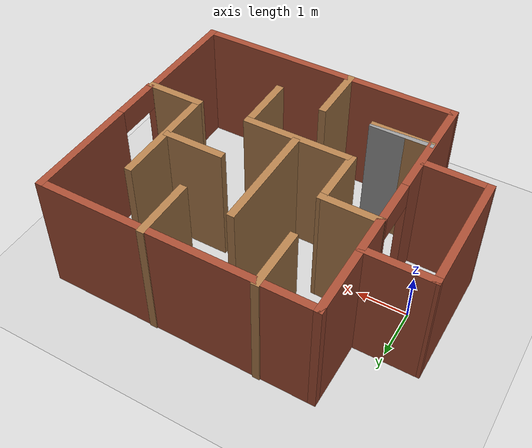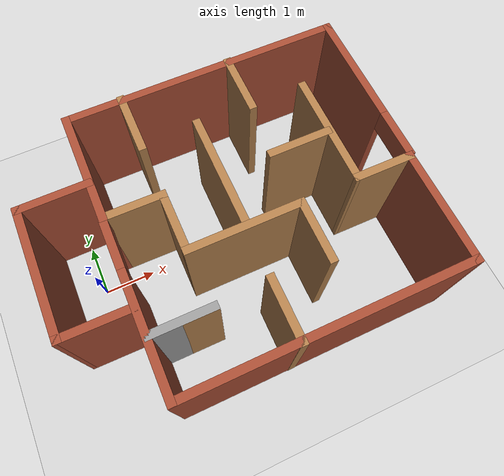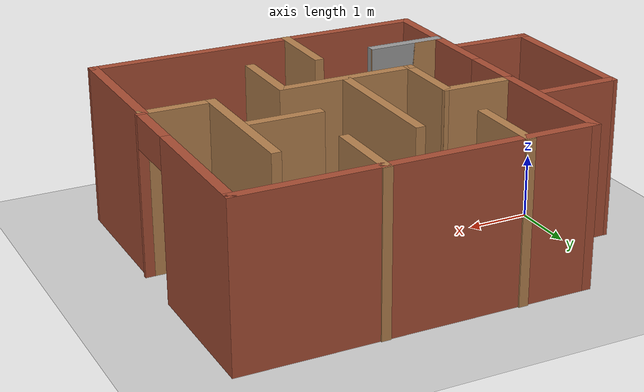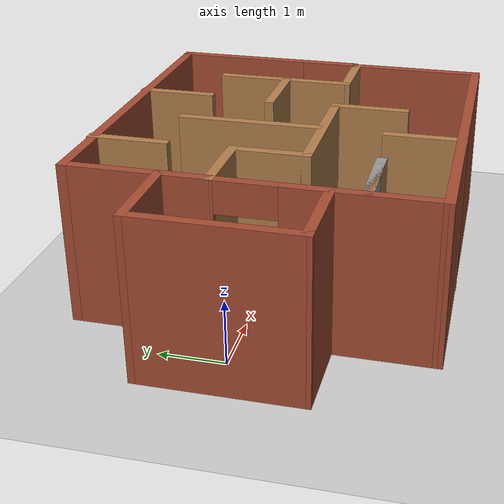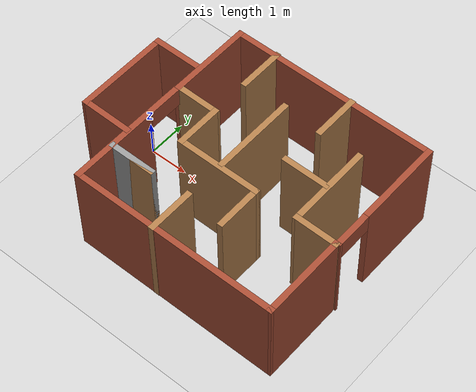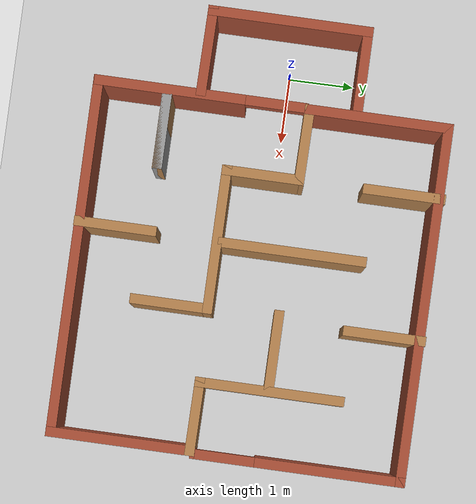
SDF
<sdf version="1.7">
 <world name="default">
  <light name="sun" type="directional">
   <pose>0 0 10 0 -0 0</pose>
   <diffuse>0.8 0.8 0.8 1</diffuse>
   <specular>0.2 0.2 0.2 1</specular>
   <attenuation>
    <range>1000</range>
    <constant>0.9</constant>
    <linear>0.01</linear>
    <quadratic>0.001</quadratic>
   </attenuation>
   <direction>-0.5 0.1 -0.9</direction>
   <spot><inner_angle>0</inner_angle><outer_angle>0</outer_angle><falloff>0</falloff></spot>
  </light>
  <model name="ground_plane">
   <static>1</static>
   <link name="link">
    <collision name="collision">
     <geometry><plane><normal>0 0 1</normal><size>100 100</size></plane></geometry>
     <surface><friction><ode><mu>100</mu><mu2>50</mu2></ode></friction></surface>
    </collision>
    <visual name="visual">
     <cast_shadows>0</cast_shadows>
     <geometry><plane><normal>0 0 1</normal><size>100 100</size></plane></geometry>
     <material>
      <script><uri>file://media/materials/scripts/gazebo.material</uri><name>Gazebo/Grey</name></script>
     </material>
    </visual>
   </link>
  </model>
  <gravity>0 0 -9.8</gravity>
  <magnetic_field>6e-06 2.3e-05 -4.2e-05</magnetic_field>
  <atmosphere type="adiabatic"/>
  <physics type="ode">
   <max_step_size>0.001</max_step_size>
   <real_time_factor>1</real_time_factor>
   <real_time_update_rate>1000</real_time_update_rate>
  </physics>
  <scene><ambient>0.4 0.4 0.4 1</ambient><background>0.7 0.7 0.7 1</background><shadows>1</shadows></scene>
  <audio><device>default</device></audio>
  <spherical_coordinates>
   <surface_model>EARTH_WGS84</surface_model>
   <latitude_deg>0</latitude_deg>
   <longitude_deg>0</longitude_deg>
   <elevation>0</elevation>
   <heading_deg>0</heading_deg>
  </spherical_coordinates>
  <model name="maze">
   <pose>2.66264 -0.17795 0 0 0 -1.57386</pose>
   <link name="Wall_1">
    <collision name="Wall_1_Collision">
     <geometry><box><size>2.25 0.15 2.5</size></box></geometry>
     <pose>0 0 1.25 0 -0 0</pose>
    </collision>
    <visual name="Wall_1_Visual">
     <pose>0 0 1.25 0 -0 0</pose>
     <geometry><box><size>2.25 0.15 2.5</size></box></geometry>
     <material>
      <script><uri>file://media/materials/scripts/gazebo.material</uri><name>Gazebo/Bricks</name></script>
      <ambient>1 1 1 1</ambient>
     </material>
     <meta><layer>0</layer></meta>
    </visual>
    <pose>-1.58804 -2.03485 0 0 -0 0</pose>
   </link>
   <link name="Wall_10">
    <pose>-1.08804 3.31515 0 0 -0 0</pose>
    <visual name="Wall_10_Visual_0">
     <pose>-0.484608 0 1.25 0 -0 0</pose>
     <geometry><box><size>2.28078 0.15 2.5</size></box></geometry>
     <material>
      <script><uri>file://media/materials/scripts/gazebo.material</uri><name>Gazebo/Bricks</name></script>
      <ambient>1 1 1 1</ambient>
     </material>
     <meta><layer>0</layer></meta>
    </visual>
    <collision name="Wall_10_Collision_0">
     <geometry><box><size>2.28078 0.15 2.5</size></box></geometry>
     <pose>-0.484608 0 1.25 0 -0 0</pose>
    </collision>
    <visual name="Wall_10_Visual_1">
     <pose>1.59039 0 1.25 0 -0 0</pose>
     <geometry><box><size>0.069216 0.15 2.5</size></box></geometry>
     <material>
      <script><uri>file://media/materials/scripts/gazebo.material</uri><name>Gazebo/Bricks</name></script>
      <ambient>1 1 1 1</ambient>
     </material>
     <meta><layer>0</layer></meta>
    </visual>
    <collision name="Wall_10_Collision_1">
     <geometry><box><size>0.069216 0.15 2.5</size></box></geometry>
     <pose>1.59039 0 1.25 0 -0 0</pose>
    </collision>
    <visual name="Wall_10_Visual_2">
     <pose>1.10578 0 2.25 0 -0 0</pose>
     <geometry><box><size>0.9 0.15 0.5</size></box></geometry>
     <material>
      <script><uri>file://media/materials/scripts/gazebo.material</uri><name>Gazebo/Bricks</name></script>
      <ambient>1 1 1 1</ambient>
     </material>
     <meta><layer>0</layer></meta>
    </visual>
    <collision name="Wall_10_Collision_2">
     <geometry><box><size>0.9 0.15 0.5</size></box></geometry>
     <pose>1.10578 0 2.25 0 -0 0</pose>
    </collision>
   </link>
   <link name="Wall_12">
    <collision name="Wall_12_Collision">
     <geometry><box><size>2.26063 0.15 2.5</size></box></geometry>
     <pose>0 0 1.25 0 -0 0</pose>
    </collision>
    <visual name="Wall_12_Visual">
     <pose>0 0 1.25 0 -0 0</pose>
     <geometry><box><size>2.26063 0.15 2.5</size></box></geometry>
     <material>
      <script><uri>file://media/materials/scripts/gazebo.material</uri><name>Gazebo/Wood</name></script>
      <ambient>1 1 1 1</ambient>
     </material>
     <meta><layer>0</layer></meta>
    </visual>
    <pose>-0.51755 2.239 0 0 -0 0</pose>
   </link>
   <link name="Wall_13">
    <collision name="Wall_13_Collision">
     <geometry><box><size>1.18906 0.15 2.5</size></box></geometry>
     <pose>0 0 1.25 0 -0 0</pose>
    </collision>
    <visual name="Wall_13_Visual">
     <pose>0 0 1.25 0 -0 0</pose>
     <geometry><box><size>1.18906 0.15 2.5</size></box></geometry>
     <material>
      <script><uri>file://media/materials/scripts/gazebo.material</uri><name>Gazebo/Wood</name></script>
      <ambient>1 1 1 1</ambient>
     </material>
     <meta><layer>0</layer></meta>
    </visual>
    <pose>0.541051 2.75844 0 0 -0 1.56447</pose>
   </link>
   <link name="Wall_15">
    <collision name="Wall_15_Collision">
     <geometry><box><size>2.25 0.15 2.5</size></box></geometry>
     <pose>0 0 1.25 0 -0 0</pose>
    </collision>
    <visual name="Wall_15_Visual">
     <pose>0 0 1.25 0 -0 0</pose>
     <geometry><box><size>2.25 0.15 2.5</size></box></geometry>
     <material>
      <script><uri>file://media/materials/scripts/gazebo.material</uri><name>Gazebo/Bricks</name></script>
      <ambient>1 1 1 1</ambient>
     </material>
     <meta><layer>0</layer></meta>
    </visual>
    <pose>1.59434 3.27788 0 0 -0 0</pose>
   </link>
   <link name="Wall_16">
    <collision name="Wall_16_Collision">
     <geometry><box><size>5.47372 0.15 2.5</size></box></geometry>
     <pose>0 0 1.25 0 -0 0</pose>
    </collision>
    <visual name="Wall_16_Visual">
     <pose>0 0 1.25 0 -0 0</pose>
     <geometry><box><size>5.47372 0.15 2.5</size></box></geometry>
     <material>
      <script><uri>file://media/materials/scripts/gazebo.material</uri><name>Gazebo/Bricks</name></script>
      <ambient>1 1 1 1</ambient>
     </material>
     <meta><layer>0</layer></meta>
    </visual>
    <pose>2.6542 0.61603 0 0 -0 -1.56709</pose>
   </link>
   <link name="Wall_17">
    <pose>1.10749 -2.04582 0 0 -0 3.14159</pose>
    <visual name="Wall_17_Visual_0">
     <pose>-0.477332 0 1.25 0 -0 0</pose>
     <geometry><box><size>2.29534 0.15 2.5</size></box></geometry>
     <material>
      <script><uri>file://media/materials/scripts/gazebo.material</uri><name>Gazebo/Bricks</name></script>
      <ambient>1 1 1 1</ambient>
     </material>
     <meta><layer>0</layer></meta>
    </visual>
    <collision name="Wall_17_Collision_0">
     <geometry><box><size>2.29534 0.15 2.5</size></box></geometry>
     <pose>-0.477332 0 1.25 0 -0 0</pose>
    </collision>
    <visual name="Wall_17_Visual_1">
     <pose>1.59767 0 1.25 0 -0 0</pose>
     <geometry><box><size>0.054665 0.15 2.5</size></box></geometry>
     <material>
      <script><uri>file://media/materials/scripts/gazebo.material</uri><name>Gazebo/Bricks</name></script>
      <ambient>1 1 1 1</ambient>
     </material>
     <meta><layer>0</layer></meta>
    </visual>
    <collision name="Wall_17_Collision_1">
     <geometry><box><size>0.054665 0.15 2.5</size></box></geometry>
     <pose>1.59767 0 1.25 0 -0 0</pose>
    </collision>
    <visual name="Wall_17_Visual_2">
     <pose>1.12034 0 2.25 0 -0 0</pose>
     <geometry><box><size>0.9 0.15 0.5</size></box></geometry>
     <material>
      <script><uri>file://media/materials/scripts/gazebo.material</uri><name>Gazebo/Bricks</name></script>
      <ambient>1 1 1 1</ambient>
     </material>
     <meta><layer>0</layer></meta>
    </visual>
    <collision name="Wall_17_Collision_2">
     <geometry><box><size>0.9 0.15 0.5</size></box></geometry>
     <pose>1.12034 0 2.25 0 -0 0</pose>
    </collision>
   </link>
   <link name="Wall_19">
    <collision name="Wall_19_Collision">
     <geometry><box><size>1.25 0.15 2.5</size></box></geometry>
     <pose>0 0 1.25 0 -0 0</pose>
    </collision>
    <visual name="Wall_19_Visual">
     <pose>0 0 1.25 0 -0 0</pose>
     <geometry><box><size>1.25 0.15 2.5</size></box></geometry>
     <material>
      <script><uri>file://media/materials/scripts/gazebo.material</uri><name>Gazebo/Grey</name></script>
      <ambient>1 1 1 1</ambient>
     </material>
     <meta><layer>0</layer></meta>
    </visual>
    <pose>1.61609 -1.46513 0 0 -0 1.5708</pose>
   </link>
   <link name="Wall_21">
    <collision name="Wall_21_Collision">
     <geometry><box><size>1.25 0.15 2.5</size></box></geometry>
     <pose>0 0 1.25 0 -0 0</pose>
    </collision>
    <visual name="Wall_21_Visual">
     <pose>0 0 1.25 0 -0 0</pose>
     <geometry><box><size>1.25 0.15 2.5</size></box></geometry>
     <material>
      <script><uri>file://media/materials/scripts/gazebo.material</uri><name>Gazebo/Wood</name></script>
      <ambient>1 1 1 1</ambient>
     </material>
     <meta><layer>0</layer></meta>
    </visual>
    <pose>2.11349 0.095501 0 0 -0 0</pose>
   </link>
   <link name="Wall_23">
    <collision name="Wall_23_Collision">
     <geometry><box><size>1.25 0.15 2.5</size></box></geometry>
     <pose>0 0 1.25 0 -0 0</pose>
    </collision>
    <visual name="Wall_23_Visual">
     <pose>0 0 1.25 0 -0 0</pose>
     <geometry><box><size>1.25 0.15 2.5</size></box></geometry>
     <material>
      <script><uri>file://media/materials/scripts/gazebo.material</uri><name>Gazebo/Wood</name></script>
      <ambient>1 1 1 1</ambient>
     </material>
     <meta><layer>0</layer></meta>
    </visual>
    <pose>-0.501113 1.6364 0 0 -0 -1.5708</pose>
   </link>
   <link name="Wall_25">
    <collision name="Wall_25_Collision">
     <geometry><box><size>1.25 0.15 2.5</size></box></geometry>
     <pose>0 0 1.25 0 -0 0</pose>
    </collision>
    <visual name="Wall_25_Visual">
     <pose>0 0 1.25 0 -0 0</pose>
     <geometry><box><size>1.25 0.15 2.5</size></box></geometry>
     <material>
      <script><uri>file://media/materials/scripts/gazebo.material</uri><name>Gazebo/Wood</name></script>
      <ambient>1 1 1 1</ambient>
     </material>
     <meta><layer>0</layer></meta>
    </visual>
    <pose>-2.10777 1.1804 0 0 -0 0</pose>
   </link>
   <link name="Wall_27">
    <collision name="Wall_27_Collision">
     <geometry><box><size>1.25 0.15 2.5</size></box></geometry>
     <pose>0 0 1.25 0 -0 0</pose>
    </collision>
    <visual name="Wall_27_Visual">
     <pose>0 0 1.25 0 -0 0</pose>
     <geometry><box><size>1.25 0.15 2.5</size></box></geometry>
     <material>
      <script><uri>file://media/materials/scripts/gazebo.material</uri><name>Gazebo/Wood</name></script>
      <ambient>1 1 1 1</ambient>
     </material>
     <meta><layer>0</layer></meta>
    </visual>
    <pose>-2.11434 -0.969675 0 0 -0 0</pose>
   </link>
   <link name="Wall_29">
    <collision name="Wall_29_Collision">
     <geometry><box><size>2.25 0.15 2.5</size></box></geometry>
     <pose>0 0 1.25 0 -0 0</pose>
    </collision>
    <visual name="Wall_29_Visual">
     <pose>0 0 1.25 0 -0 0</pose>
     <geometry><box><size>2.25 0.15 2.5</size></box></geometry>
     <material>
      <script><uri>file://media/materials/scripts/gazebo.material</uri><name>Gazebo/Wood</name></script>
      <ambient>1 1 1 1</ambient>
     </material>
     <meta><layer>0</layer></meta>
    </visual>
    <pose>-0.56889 0.121802 0 0 -0 0</pose>
   </link>
   <link name="Wall_31">
    <collision name="Wall_31_Collision">
     <geometry><box><size>1.25 0.15 2.5</size></box></geometry>
     <pose>0 0 1.25 0 -0 0</pose>
    </collision>
    <visual name="Wall_31_Visual">
     <pose>0 0 1.25 0 -0 0</pose>
     <geometry><box><size>1.25 0.15 2.5</size></box></geometry>
     <material>
      <script><uri>file://media/materials/scripts/gazebo.material</uri><name>Gazebo/Wood</name></script>
      <ambient>1 1 1 1</ambient>
     </material>
     <meta><layer>0</layer></meta>
    </visual>
    <pose>1.61609 -1.46513 0 0 -0 -1.5708</pose>
   </link>
   <link name="Wall_33">
    <collision name="Wall_33_Collision">
     <geometry><box><size>1.41815 0.15 2.5</size></box></geometry>
     <pose>0 0 1.25 0 -0 0</pose>
    </collision>
    <visual name="Wall_33_Visual">
     <pose>0 0 1.25 0 -0 0</pose>
     <geometry><box><size>1.41815 0.15 2.5</size></box></geometry>
     <material>
      <script><uri>file://media/materials/scripts/gazebo.material</uri><name>Gazebo/Bricks</name></script>
      <ambient>1 1 1 1</ambient>
     </material>
     <meta><layer>0</layer></meta>
    </visual>
    <pose>-1.25275 -2.68097 0 0 -0 -1.56939</pose>
   </link>
   <link name="Wall_34">
    <collision name="Wall_34_Collision">
     <geometry><box><size>2.50578 0.15 2.5</size></box></geometry>
     <pose>0 0 1.25 0 -0 0</pose>
    </collision>
    <visual name="Wall_34_Visual">
     <pose>0 0 1.25 0 -0 0</pose>
     <geometry><box><size>2.50578 0.15 2.5</size></box></geometry>
     <material>
      <script><uri>file://media/materials/scripts/gazebo.material</uri><name>Gazebo/Bricks</name></script>
      <ambient>1 1 1 1</ambient>
     </material>
     <meta><layer>0</layer></meta>
    </visual>
    <pose>-0.073961 -3.31452 0 0 -0 0.00042</pose>
   </link>
   <link name="Wall_35">
    <collision name="Wall_35_Collision">
     <geometry><box><size>1.37218 0.15 2.5</size></box></geometry>
     <pose>0 0 1.25 0 -0 0</pose>
    </collision>
    <visual name="Wall_35_Visual">
     <pose>0 0 1.25 0 -0 0</pose>
     <geometry><box><size>1.37218 0.15 2.5</size></box></geometry>
     <material>
      <script><uri>file://media/materials/scripts/gazebo.material</uri><name>Gazebo/Bricks</name></script>
      <ambient>1 1 1 1</ambient>
     </material>
     <meta><layer>0</layer></meta>
    </visual>
    <pose>1.10993 -2.70293 0 0 -0 1.56099</pose>
   </link>
   <link name="Wall_4">
    <collision name="Wall_4_Collision">
     <geometry><box><size>1.22176 0.15 2.5</size></box></geometry>
     <pose>0 0 1.25 0 -0 0</pose>
    </collision>
    <visual name="Wall_4_Visual">
     <pose>0 0 1.25 0 -0 0</pose>
     <geometry><box><size>1.22176 0.15 2.5</size></box></geometry>
     <material>
      <script><uri>file://media/materials/scripts/gazebo.material</uri><name>Gazebo/Wood</name></script>
      <ambient>1 1 1 1</ambient>
     </material>
     <meta><layer>0</layer></meta>
    </visual>
    <pose>-0.532727 -1.49898 0 0 -0 1.56088</pose>
   </link>
   <link name="Wall_5">
    <collision name="Wall_5_Collision">
     <geometry><box><size>1.25 0.15 2.5</size></box></geometry>
     <pose>0 0 1.25 0 -0 0</pose>
    </collision>
    <visual name="Wall_5_Visual">
     <pose>0 0 1.25 0 -0 0</pose>
     <geometry><box><size>1.25 0.15 2.5</size></box></geometry>
     <material>
      <script><uri>file://media/materials/scripts/gazebo.material</uri><name>Gazebo/Wood</name></script>
      <ambient>1 1 1 1</ambient>
     </material>
     <meta><layer>0</layer></meta>
    </visual>
    <pose>0.022587 -0.9631 0 0 -0 0</pose>
   </link>
   <link name="Wall_6">
    <collision name="Wall_6_Collision">
     <geometry><box><size>2.25 0.15 2.5</size></box></geometry>
     <pose>0 0 1.25 0 -0 0</pose>
    </collision>
    <visual name="Wall_6_Visual">
     <pose>0 0 1.25 0 -0 0</pose>
     <geometry><box><size>2.25 0.15 2.5</size></box></geometry>
     <material>
      <script><uri>file://media/materials/scripts/gazebo.material</uri><name>Gazebo/Wood</name></script>
      <ambient>1 1 1 1</ambient>
     </material>
     <meta><layer>0</layer></meta>
    </visual>
    <pose>0.572587 0.0869 0 0 -0 1.5708</pose>
   </link>
   <link name="Wall_7">
    <collision name="Wall_7_Collision">
     <geometry><box><size>1.25 0.15 2.5</size></box></geometry>
     <pose>0 0 1.25 0 -0 0</pose>
    </collision>
    <visual name="Wall_7_Visual">
     <pose>0 0 1.25 0 -0 0</pose>
     <geometry><box><size>1.25 0.15 2.5</size></box></geometry>
     <material>
      <script><uri>file://media/materials/scripts/gazebo.material</uri><name>Gazebo/Wood</name></script>
      <ambient>1 1 1 1</ambient>
     </material>
     <meta><layer>0</layer></meta>
    </visual>
    <pose>1.12259 1.1369 0 0 -0 0</pose>
   </link>
   <link name="Wall_9">
    <collision name="Wall_9_Collision">
     <geometry><box><size>5.5 0.15 2.5</size></box></geometry>
     <pose>0 0 1.25 0 -0 0</pose>
    </collision>
    <visual name="Wall_9_Visual">
     <pose>0 0 1.25 0 -0 0</pose>
     <geometry><box><size>5.5 0.15 2.5</size></box></geometry>
     <material>
      <script><uri>file://media/materials/scripts/gazebo.material</uri><name>Gazebo/Bricks</name></script>
      <ambient>1 1 1 1</ambient>
     </material>
     <meta><layer>0</layer></meta>
    </visual>
    <pose>-2.63804 0.640148 0 0 -0 1.5708</pose>
   </link>
   <static>1</static>
  </model>
 </world>
</sdf>
